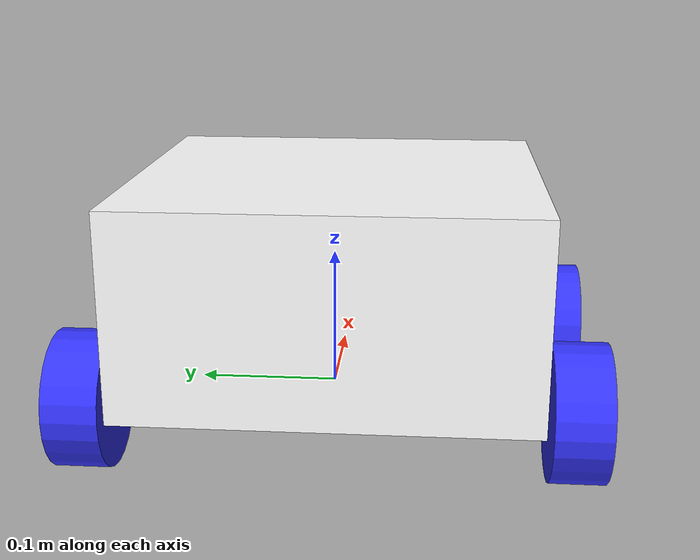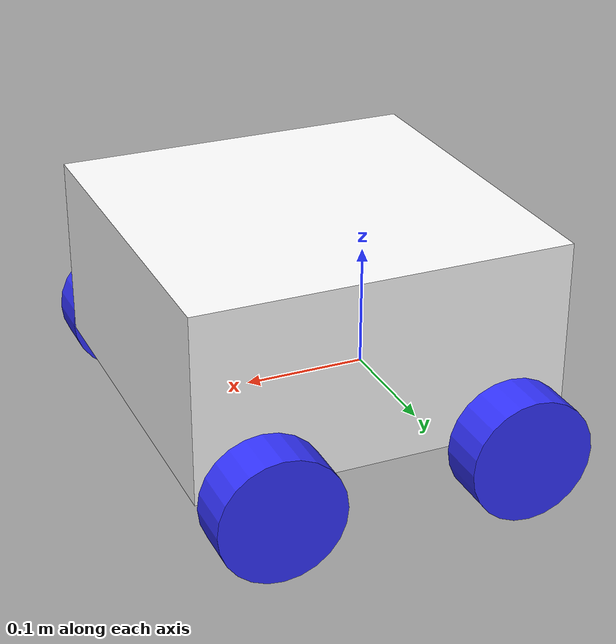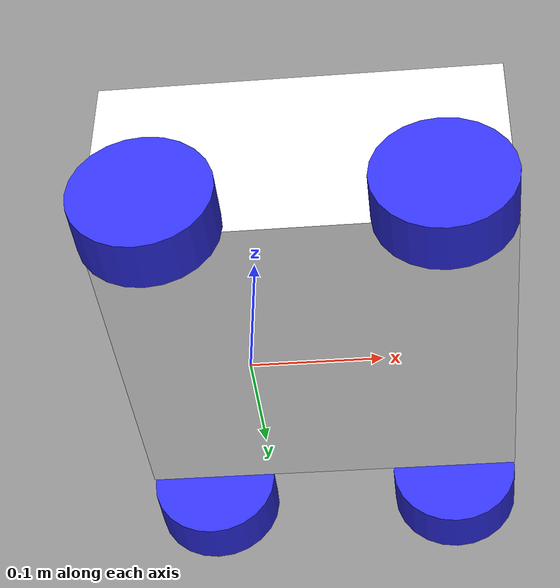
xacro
<?xml version="1.0"?>
<robot xmlns:xacro="http://www.ros.org/wiki/xacro" name="robot">

	<xacro:include filename="inertial_macros.xacro" />
	<!-- color and textures -->

	<material name="white">
		<color rgba="1 1 1 1" />
	</material>
	<material name="orange">
		<color rgba="1 .3 .1 1" />
	</material>
	<material name="blue">
		<color rgba=".2 .2 1 1" />
	</material>
	<material name="black">
		<color rgba="0 0 0 1" />
	</material>

	<!-- base link -->

	<link name="base_link">

	</link>

	<!-- BASE_FOOTPRINT LINK -->

        <joint name="base_footprint_joint" type="fixed">
	    <parent link="base_link"/>
	    <child link="base_footprint"/>
	    <origin xyz="0 0 0" rpy="0 0 0"/>
        </joint>

        <link name="base_footprint">
        </link>

	<!-- chassis link -->

	<joint name="chassis_joint" type="fixed">
		<parent link="base_link"/>
		<child link="chassis"/>
		<origin xyz="-0.1 0 0"/>
	</joint>

	<link name="chassis">
		<visual>
			<origin xyz =".15 0 0.075"/>
			<geometry>
				<box size="0.3 0.3 .15"/>
			</geometry>
			<material name="white"/>
		</visual>
		<collision>
			<origin xyz =".15 0 0.075"/>
			<geometry>
				<box size="0.3 0.3 .15"/>
			</geometry>
		</collision>
		<xacro:inertial_box mass="0.5" x="0.3" y="0.3" z="0.15">
			<origin xyz="0.15 0 0.075" rpy="0 0 0"/>
		</xacro:inertial_box>
	</link>
	<gazebo reference="chassis">
		<material>Gazebo/White</material>
	</gazebo>
	<!-- left wheel -->

	<joint name="left_wheel_joint" type="continuous">
		<parent link="base_link"/>
		<child link="left_wheel"/>
		<origin xyz="-0.05 0.175 0" rpy="-${pi/2} 0 0" />
		<axis  xyz="0 0 1"/>
	</joint>
	<link name="left_wheel">
		<visual>
			<geometry>
				<cylinder radius="0.05" length="0.04"/>
			</geometry>
			<material name="blue"/>
		</visual>
		<collision>
			<geometry>
				<cylinder radius="0.05" length="0.04"/>
			</geometry>
		</collision>
		<xacro:inertial_cylinder mass="0.1" length="0.04" radius="0.05">
			<origin xyz="0 0 0" rpy="0 0 0"/>
		</xacro:inertial_cylinder>
	</link>

	<gazebo reference="left_wheel">
		<material>Gazebo/Black</material>
	</gazebo>
	<!-- right wheel -->

	<joint name="right_wheel_joint" type="continuous">
		<parent link="base_link"/>
		<child link="right_wheel"/>
		<origin xyz="-0.05 -0.175 0" rpy="${pi/2} 0 0" />
		<axis  xyz="0 0 -1"/>
	</joint>
	<link name="right_wheel">
		<visual>
			<geometry>
				<cylinder radius="0.05" length="0.04"/>
			</geometry>
			<material name="blue"/>
		</visual>
		<collision>
			<geometry>
				<cylinder radius="0.05" length="0.04"/>
			</geometry>
		</collision>
		<xacro:inertial_cylinder mass="0.1" length="0.04" radius="0.05">
			<origin xyz="0 0 0" rpy="0 0 0"/>
		</xacro:inertial_cylinder>
	</link>
	<gazebo reference="right_wheel">
		<material>Gazebo/Black</material>
	</gazebo>
	<!-- caster wheel boys -->

	<joint name="cw_right_joint" type="fixed">
		<parent link="chassis"/>
		<child link="cw_right"/>
		<origin xyz=".25 -0.175 0" rpy="${pi/2} 0 0" />
	</joint>
	<link name="cw_right">
		<visual>
			<geometry>
				<cylinder radius="0.05" length="0.04"/>
			</geometry>
			<material name="blue"/>
		</visual>
		<collision>
			<geometry>
				<cylinder radius="0.05" length="0.04"/>
			</geometry>
		</collision>
		<xacro:inertial_cylinder mass="0.1" length="0.04" radius="0.05">
			<origin xyz="0 0 0" rpy="0 0 0"/>
		</xacro:inertial_cylinder>
	</link>
	<gazebo reference="cw_right">
		<material>Gazebo/Black</material>
		<mu1 value="0.001" />
		<mu2 value="0.001" />
	</gazebo>
	<joint name="cw_left_joint" type="fixed">
		<parent link="chassis"/>
		<child link="cw_left"/>
		<origin xyz=".25 0.175 0" rpy="${pi/2} 0 0" />
	</joint>

	<link name="cw_left">
		<visual>
			<geometry>
				<cylinder radius="0.05" length="0.04"/>
			</geometry>
			<material name="blue"/>
		</visual>
		<collision>
			<geometry>
				<cylinder radius="0.05" length="0.04"/>
			</geometry>
		</collision>
		<xacro:inertial_cylinder mass="0.1" length="0.04" radius="0.05">
			<origin xyz="0 0 0" rpy="0 0 0"/>
		</xacro:inertial_cylinder>
	</link>
	<gazebo reference="cw_left">
		<material>Gazebo/Black</material>
		<mu1 value="0.001" />
		<mu2 value="0.001" />
	</gazebo>

</robot>

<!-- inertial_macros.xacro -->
<robot xmlns:xacro="http://www.ros.org/wiki/xacro" name="robot">

    <!-- Specify some standard inertial calculations https://en.wikipedia.org/wiki/List_of_moments_of_inertia -->
    <!-- These make use of xacro's mathematical functionality -->

    <xacro:macro name="inertial_sphere" params="mass radius *origin">
        <inertial>
            <xacro:insert_block name="origin"/>
            <mass value="${mass}" />
            <inertia ixx="${(2/5) * mass * (radius*radius)}" ixy="0.0" ixz="0.0"
                    iyy="${(2/5) * mass * (radius*radius)}" iyz="0.0"
                    izz="${(2/5) * mass * (radius*radius)}" />
        </inertial>
    </xacro:macro>

    <xacro:macro name="inertial_box" params="mass x y z *origin">
        <inertial>
            <xacro:insert_block name="origin"/>
            <mass value="${mass}" />
            <inertia ixx="${(1/12) * mass * (y*y+z*z)}" ixy="0.0" ixz="0.0"
                    iyy="${(1/12) * mass * (x*x+z*z)}" iyz="0.0"
                    izz="${(1/12) * mass * (x*x+y*y)}" />
        </inertial>
    </xacro:macro>

    <xacro:macro name="inertial_cylinder" params="mass length radius *origin">
        <inertial>
            <xacro:insert_block name="origin"/>
            <mass value="${mass}" />
            <inertia ixx="${(1/12) * mass * (3*radius*radius + length*length)}" ixy="0.0" ixz="0.0"
                    iyy="${(1/12) * mass * (3*radius*radius + length*length)}" iyz="0.0"
                    izz="${(1/2) * mass * (radius*radius)}" />
        </inertial>
    </xacro:macro>

</robot>
